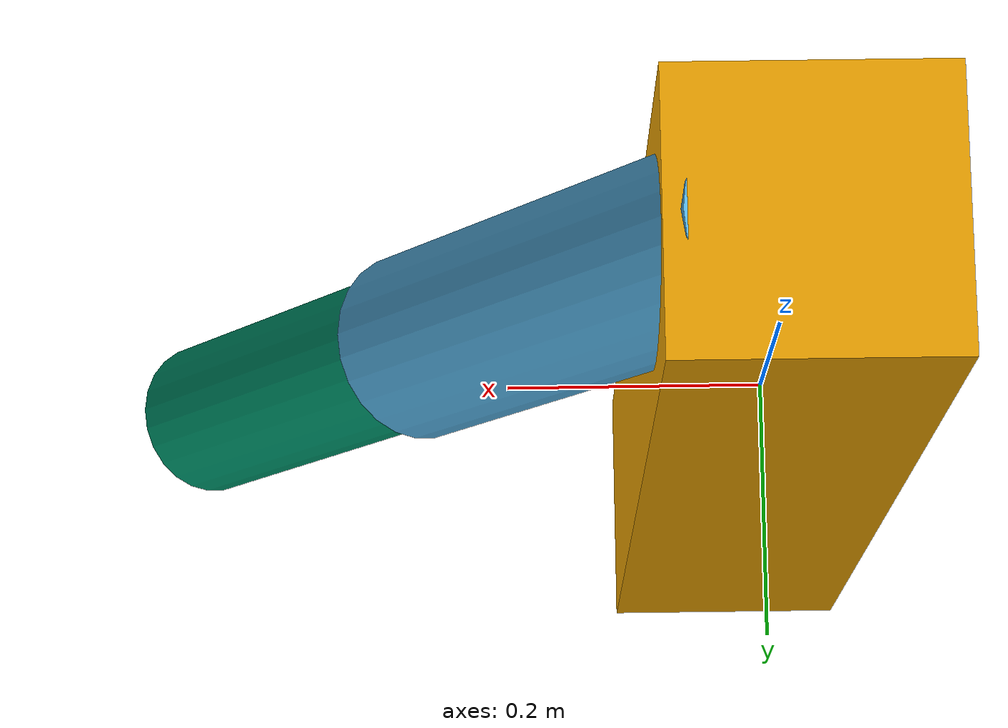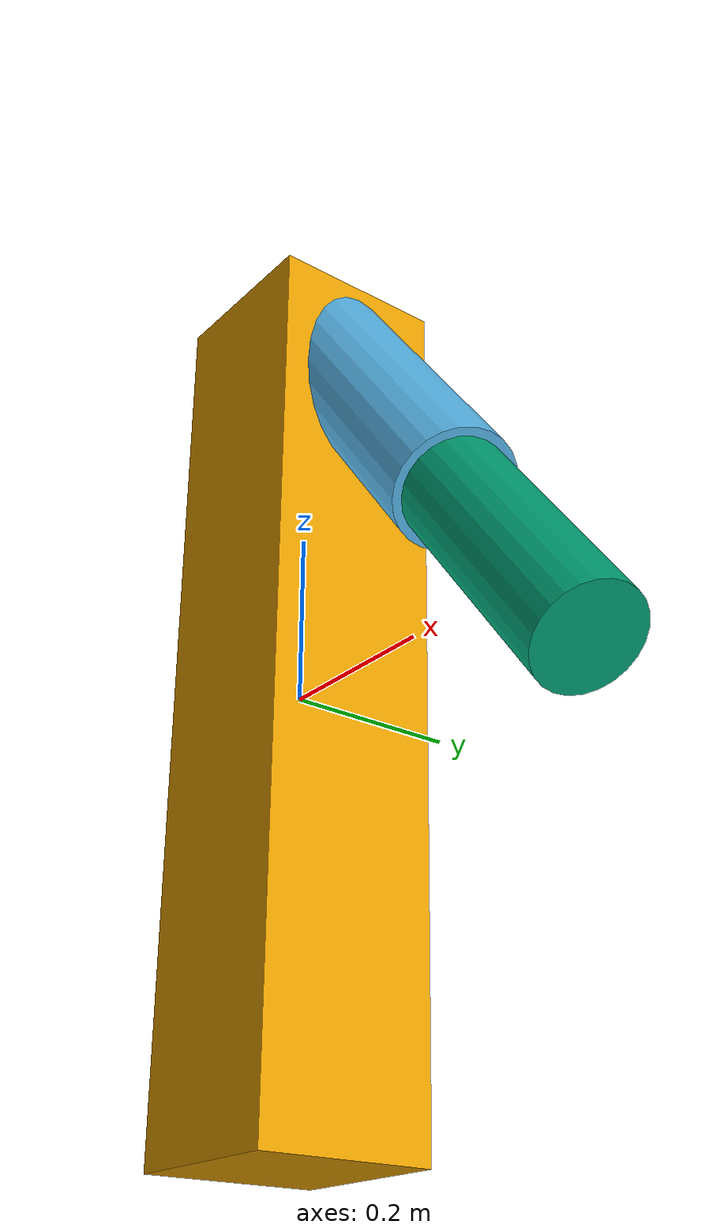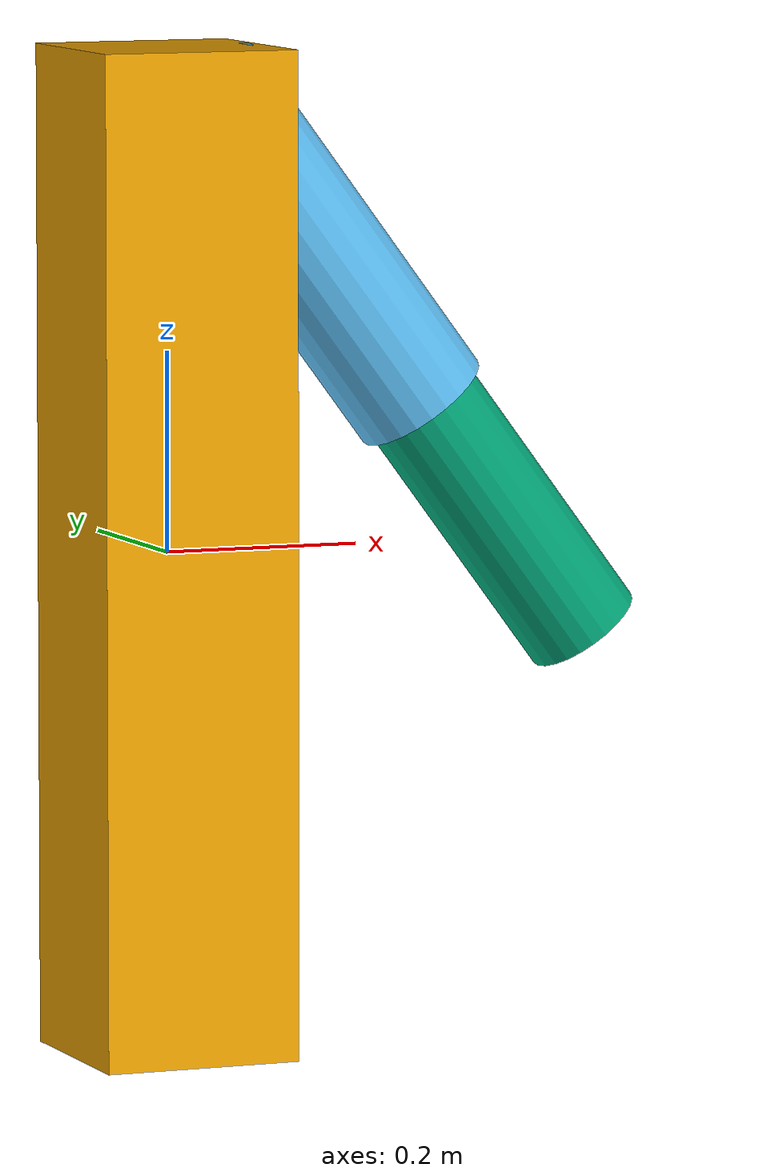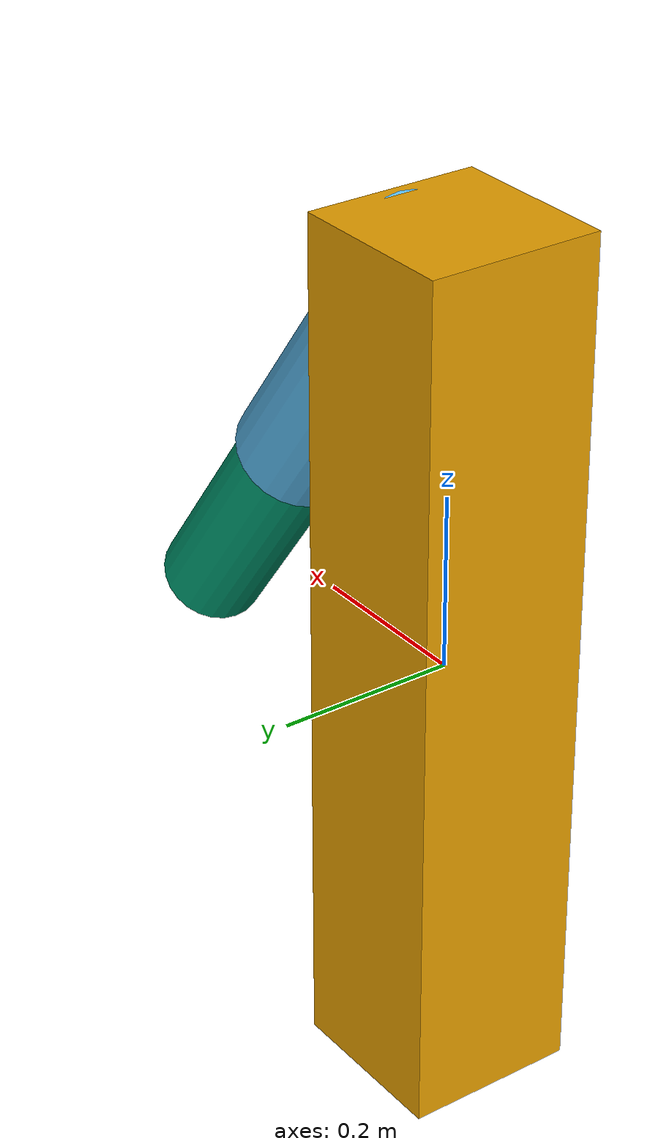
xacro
<?xml version="1.0" ?>
<!-- |    This document was autogenerated by xacro from /home/charlie/catkin_ws/src/exoarm_description/urdf/exoarm.xacro | -->
<!-- |    EDITING THIS FILE BY HAND IS NOT RECOMMENDED                                 | -->
<!-- |    This document was autogenerated by xacro from /home/charlie/catkin_ws/src/exoarm_description/urdf/exoarm.xacro | -->
<!-- |    EDITING THIS FILE BY HAND IS NOT RECOMMENDED                                 | -->
<!-- |    This document was autogenerated by xacro from /home/charlie/catkin_ws/src/exoarm_description/urdf/exoarm.xacro | -->
<!-- |    EDITING THIS FILE BY HAND IS NOT RECOMMENDED                                 | -->
<robot name="exoarm">
    <!-- Parameters:-->
    <!-- Links:-->
    <!-- Stand-->
    <link name="stand">
        <collision>
            <origin rpy="0.0 0.0 0.0" xyz="0.0 0.0 0.0" />
            <geometry>
                <box size="0.2 0.2 1" />
            </geometry>
        </collision>
        <visual>
            <origin rpy="0.0 0.0 0.0" xyz="0.0 0.0 0.0" />
            <geometry>
                <box size="0.2 0.2 1" />
            </geometry>
        </visual>

<inertial>
        <origin rpy="0 0 0" xyz="0 0 0" />
        <mass value="100" />
        <inertia ixx="1.0" ixy="0.0" ixz="0.0" iyy="1.0" iyz="0.0" izz="1.0" />
        </inertial>

<inertial>
            <mass value="0.1" />
            <inertia ixx="0.03" iyy="0.03" izz="0.03" ixy="0.0" ixz="0.0" iyz="0.0" />
        </inertial>

    </link>
    <!-- Upper Arm-->
    <link name="upperarm">
        <collision>
            <origin rpy="0.0 0.0 0.0" xyz="0.0 0.0 0.0" />
            <geometry>
                <cylinder length="0.4" radius="0.07" />
            </geometry>
        </collision>
        <visual>
            <origin rpy="0.0 0.0 0.0" xyz="0.0 0.0 0.0" />
            <geometry>
                <cylinder length="0.4" radius="0.07" />
            </geometry>
        </visual>

<inertial>
            <origin rpy="0 0 0" xyz="0 0 0.0" />
            <mass value="1" />
            <inertia ixx="1.0" ixy="0.0" ixz="0.0" iyy="1.0" iyz="0.0" izz="1.0" />
        </inertial>

    </link>
    <!-- Lower Arm-->
    <link name="lowerarm">
        <collision>
            <origin rpy="0.0 0.0 0.0" xyz="0.0 0.0 0.16" />
            <geometry>
                <cylinder length="0.35" radius="0.06" />
            </geometry>
        </collision>
        <visual>
            <origin rpy="0.0 0.0 0.0" xyz="0.0 0.0 0.16" />
            <geometry>
                <cylinder length="0.35" radius="0.06" />
            </geometry>
        </visual>

<inertial>
            <origin rpy="0 0 0" xyz="0 0 0.16" />
            <mass value="1" />
            <inertia ixx="1.0" ixy="0.0" ixz="0.0" iyy="1.0" iyz="0.0" izz="1.0" />
        </inertial>

    </link>
    <link name="ground_plane" />
    <!-- Joints:-->
    <!-- Stand joint-->
    <joint name="stand" type="fixed">
        <parent link="stand" />
        <child link="upperarm" />
        <origin rpy="0 2.5 0" xyz="0.15 0 0.3" />
    </joint>
    <joint name="virtual_joint" type="fixed">
        <parent link="ground_plane" />
        <child link="stand" />
        <origin rpy="0.0 0.0 0.0" xyz="0.0 0.0 0.0" />
    </joint>
    <!-- Elbow joint-->
    <joint name="elbow" type="continuous">
        <parent link="upperarm" />
        <child link="lowerarm" />
        <origin rpy="0 0 0" xyz="0 0 0.16" />
        <axis xyz="0 -1 0" />
        <limit effort="1000" lower="0.0" upper="2.0" velocity="1000" />
        <dynamics friction="0.1" />
    </joint>

    <transmission name="trans_elbow">
        <type>transmission_interface/SimpleTransmission</type>
        <joint name="elbow">
            <hardwareInterface>hardware_interface/PositionJointInterface</hardwareInterface>
        </joint>
        <actuator name="elbow_motor">
            <hardwareInterface>hardware_interface/PositionJointInterface</hardwareInterface>
            <mechanicalReduction>1</mechanicalReduction>
        </actuator>
    </transmission>
    <gazebo>
        <plugin filename="libgazebo_ros_control.so" name="gazebo_ros_control">
            <robotNamespace>/</robotNamespace>
        </plugin>
    </gazebo>
</robot>
